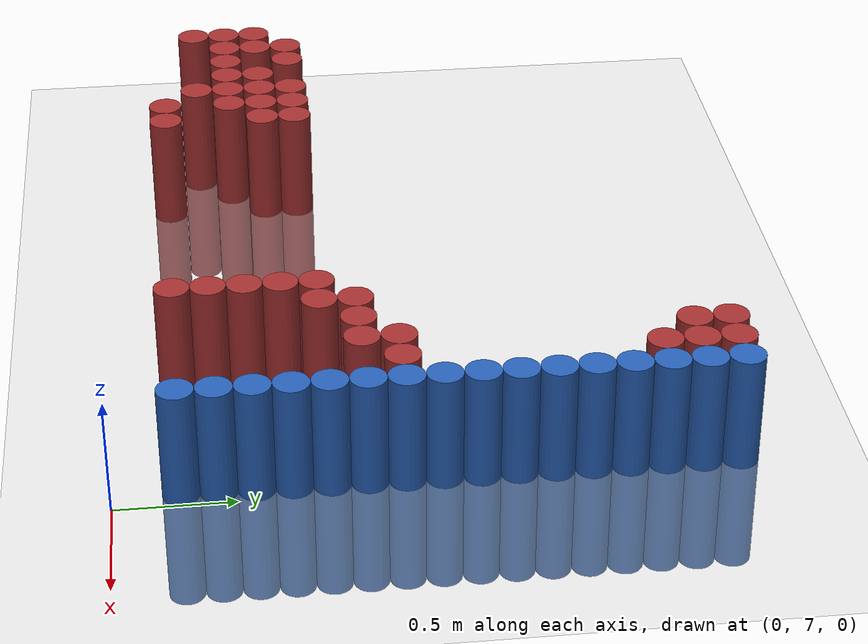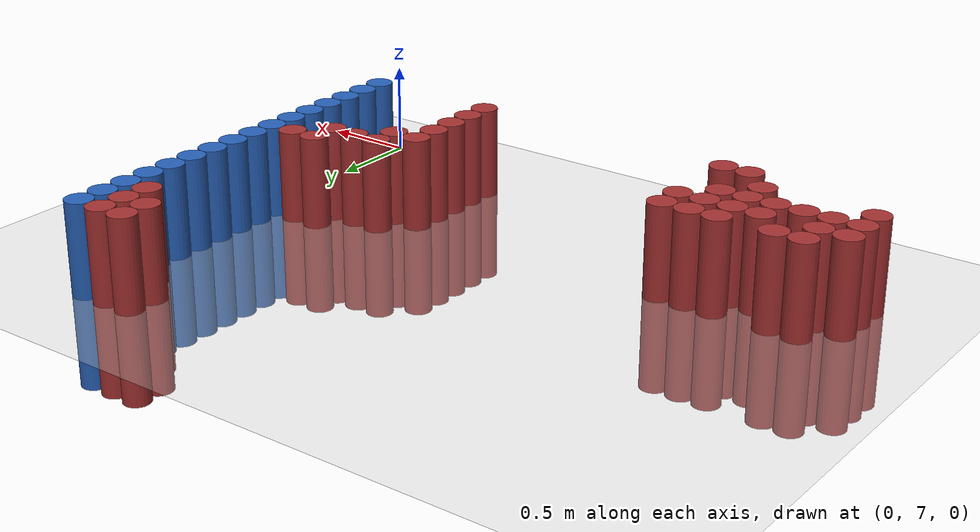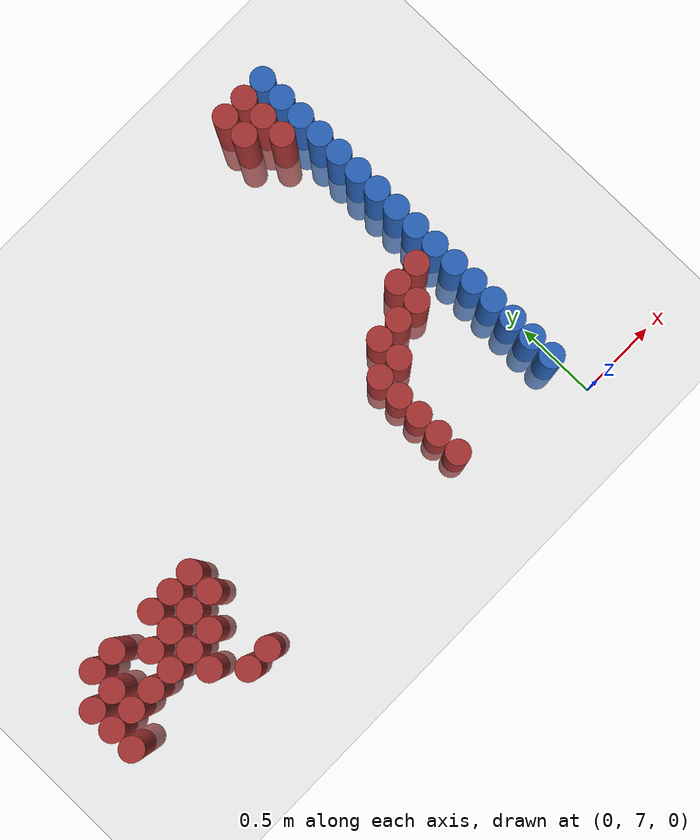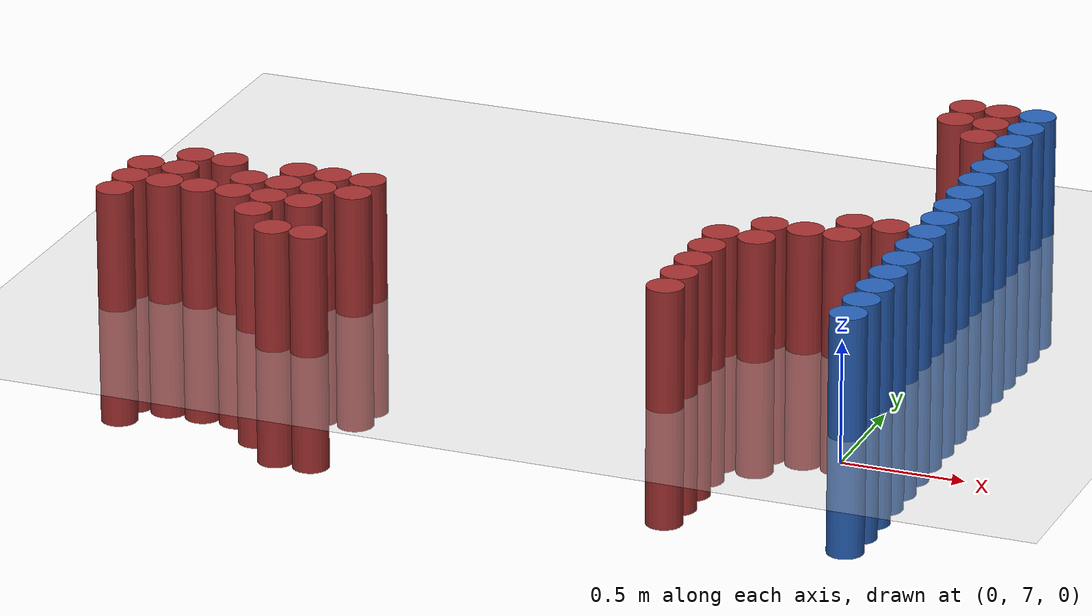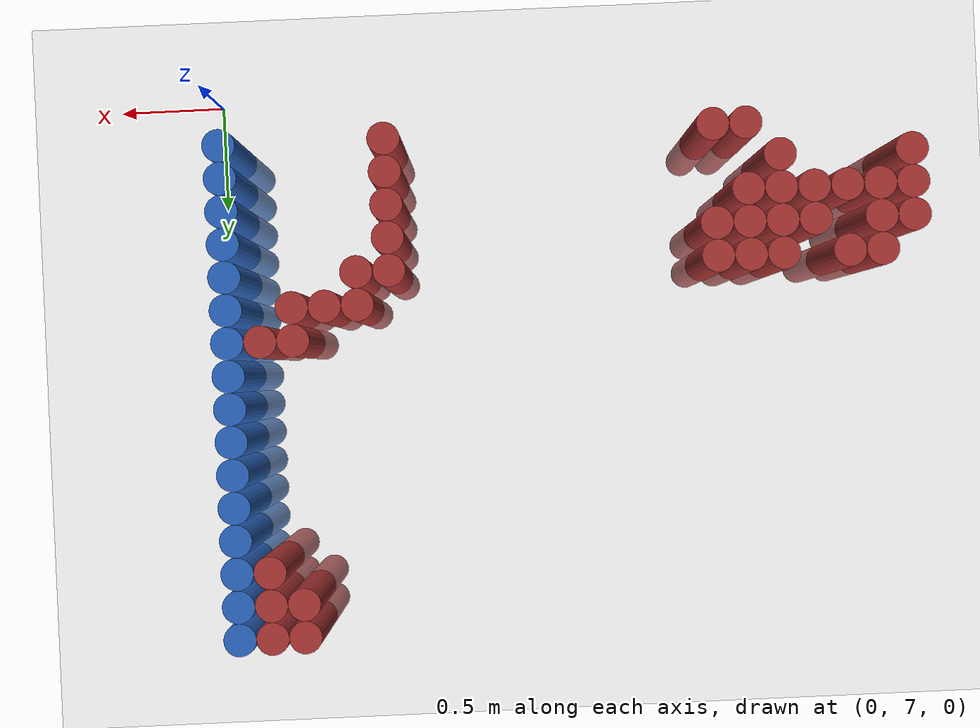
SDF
<sdf version="1.6">
 <world name="default">
  <model name="ground_plane">
   <static>1</static>
   <link name="link">
    <collision name="collision">
     <geometry><plane><normal>0 0 1</normal><size>100 100</size></plane></geometry>
     <surface><friction><ode><mu>100</mu><mu2>50</mu2></ode></friction></surface>
    </collision>
    <visual name="visual">
     <cast_shadows>0</cast_shadows>
     <geometry><plane><normal>0 0 1</normal><size>100 100</size></plane></geometry>
     <material>
      <script><uri>file://media/materials/scripts/gazebo.material</uri><name>Gazebo/Grey</name></script>
     </material>
    </visual>
   </link>
  </model>
  <model name="unit_cylinder_170">
   <static>1</static>
   <pose>-3.225000 7.425000 0.000000 0.000000 0.000000 0.000000</pose>
   <link name="link">
    <inertial>
     <mass>1</mass>
     <inertia><ixx>0.145833</ixx><ixy>0</ixy><ixz>0</ixz><iyy>0.145833</iyy><iyz>0</iyz><izz>0.125</izz></inertia>
    </inertial>
    <collision name="collision">
     <geometry><cylinder><radius>0.075000</radius><length>1</length></cylinder></geometry>
    </collision>
    <visual name="visual">
     <geometry><cylinder><radius>0.075000</radius><length>1</length></cylinder></geometry>
     <material>
      <ambient>0.648000 0.192000 0.192000 1</ambient>
      <diffuse>0.648000 0.192000 0.192000 1</diffuse>
     </material>
     <material>
      <script><name>Gazebo/Grey</name><uri>file://media/materials/scripts/gazebo.material</uri></script>
     </material>
    </visual>
   </link>
  </model>
  <model name="unit_cylinder_171">
   <static>1</static>
   <pose>-3.225000 7.575000 0.000000 0.000000 0.000000 0.000000</pose>
   <link name="link">
    <inertial>
     <mass>1</mass>
     <inertia><ixx>0.145833</ixx><ixy>0</ixy><ixz>0</ixz><iyy>0.145833</iyy><iyz>0</iyz><izz>0.125</izz></inertia>
    </inertial>
    <collision name="collision">
     <geometry><cylinder><radius>0.075000</radius><length>1</length></cylinder></geometry>
    </collision>
    <visual name="visual">
     <geometry><cylinder><radius>0.075000</radius><length>1</length></cylinder></geometry>
     <material>
      <ambient>0.648000 0.192000 0.192000 1</ambient>
      <diffuse>0.648000 0.192000 0.192000 1</diffuse>
     </material>
     <material>
      <script><name>Gazebo/Grey</name><uri>file://media/materials/scripts/gazebo.material</uri></script>
     </material>
    </visual>
   </link>
  </model>
  <model name="unit_cylinder_172">
   <static>1</static>
   <pose>-3.225000 7.725000 0.000000 0.000000 0.000000 0.000000</pose>
   <link name="link">
    <inertial>
     <mass>1</mass>
     <inertia><ixx>0.145833</ixx><ixy>0</ixy><ixz>0</ixz><iyy>0.145833</iyy><iyz>0</iyz><izz>0.125</izz></inertia>
    </inertial>
    <collision name="collision">
     <geometry><cylinder><radius>0.075000</radius><length>1</length></cylinder></geometry>
    </collision>
    <visual name="visual">
     <geometry><cylinder><radius>0.075000</radius><length>1</length></cylinder></geometry>
     <material>
      <ambient>0.648000 0.192000 0.192000 1</ambient>
      <diffuse>0.648000 0.192000 0.192000 1</diffuse>
     </material>
     <material>
      <script><name>Gazebo/Grey</name><uri>file://media/materials/scripts/gazebo.material</uri></script>
     </material>
    </visual>
   </link>
  </model>
  <model name="unit_cylinder_178">
   <static>1</static>
   <pose>-3.075000 7.575000 0.000000 0.000000 0.000000 0.000000</pose>
   <link name="link">
    <inertial>
     <mass>1</mass>
     <inertia><ixx>0.145833</ixx><ixy>0</ixy><ixz>0</ixz><iyy>0.145833</iyy><iyz>0</iyz><izz>0.125</izz></inertia>
    </inertial>
    <collision name="collision">
     <geometry><cylinder><radius>0.075000</radius><length>1</length></cylinder></geometry>
    </collision>
    <visual name="visual">
     <geometry><cylinder><radius>0.075000</radius><length>1</length></cylinder></geometry>
     <material>
      <ambient>0.648000 0.192000 0.192000 1</ambient>
      <diffuse>0.648000 0.192000 0.192000 1</diffuse>
     </material>
     <material>
      <script><name>Gazebo/Grey</name><uri>file://media/materials/scripts/gazebo.material</uri></script>
     </material>
    </visual>
   </link>
  </model>
  <model name="unit_cylinder_179">
   <static>1</static>
   <pose>-3.075000 7.725000 0.000000 0.000000 0.000000 0.000000</pose>
   <link name="link">
    <inertial>
     <mass>1</mass>
     <inertia><ixx>0.145833</ixx><ixy>0</ixy><ixz>0</ixz><iyy>0.145833</iyy><iyz>0</iyz><izz>0.125</izz></inertia>
    </inertial>
    <collision name="collision">
     <geometry><cylinder><radius>0.075000</radius><length>1</length></cylinder></geometry>
    </collision>
    <visual name="visual">
     <geometry><cylinder><radius>0.075000</radius><length>1</length></cylinder></geometry>
     <material>
      <ambient>0.648000 0.192000 0.192000 1</ambient>
      <diffuse>0.648000 0.192000 0.192000 1</diffuse>
     </material>
     <material>
      <script><name>Gazebo/Grey</name><uri>file://media/materials/scripts/gazebo.material</uri></script>
     </material>
    </visual>
   </link>
  </model>
  <model name="unit_cylinder_180">
   <static>1</static>
   <pose>-3.075000 7.875000 0.000000 0.000000 0.000000 0.000000</pose>
   <link name="link">
    <inertial>
     <mass>1</mass>
     <inertia><ixx>0.145833</ixx><ixy>0</ixy><ixz>0</ixz><iyy>0.145833</iyy><iyz>0</iyz><izz>0.125</izz></inertia>
    </inertial>
    <collision name="collision">
     <geometry><cylinder><radius>0.075000</radius><length>1</length></cylinder></geometry>
    </collision>
    <visual name="visual">
     <geometry><cylinder><radius>0.075000</radius><length>1</length></cylinder></geometry>
     <material>
      <ambient>0.648000 0.192000 0.192000 1</ambient>
      <diffuse>0.648000 0.192000 0.192000 1</diffuse>
     </material>
     <material>
      <script><name>Gazebo/Grey</name><uri>file://media/materials/scripts/gazebo.material</uri></script>
     </material>
    </visual>
   </link>
  </model>
  <model name="unit_cylinder_188">
   <static>1</static>
   <pose>-2.925000 7.575000 0.000000 0.000000 0.000000 0.000000</pose>
   <link name="link">
    <inertial>
     <mass>1</mass>
     <inertia><ixx>0.145833</ixx><ixy>0</ixy><ixz>0</ixz><iyy>0.145833</iyy><iyz>0</iyz><izz>0.125</izz></inertia>
    </inertial>
    <collision name="collision">
     <geometry><cylinder><radius>0.075000</radius><length>1</length></cylinder></geometry>
    </collision>
    <visual name="visual">
     <geometry><cylinder><radius>0.075000</radius><length>1</length></cylinder></geometry>
     <material>
      <ambient>0.648000 0.192000 0.192000 1</ambient>
      <diffuse>0.648000 0.192000 0.192000 1</diffuse>
     </material>
     <material>
      <script><name>Gazebo/Grey</name><uri>file://media/materials/scripts/gazebo.material</uri></script>
     </material>
    </visual>
   </link>
  </model>
  <model name="unit_cylinder_189">
   <static>1</static>
   <pose>-2.925000 7.875000 0.000000 0.000000 0.000000 0.000000</pose>
   <link name="link">
    <inertial>
     <mass>1</mass>
     <inertia><ixx>0.145833</ixx><ixy>0</ixy><ixz>0</ixz><iyy>0.145833</iyy><iyz>0</iyz><izz>0.125</izz></inertia>
    </inertial>
    <collision name="collision">
     <geometry><cylinder><radius>0.075000</radius><length>1</length></cylinder></geometry>
    </collision>
    <visual name="visual">
     <geometry><cylinder><radius>0.075000</radius><length>1</length></cylinder></geometry>
     <material>
      <ambient>0.648000 0.192000 0.192000 1</ambient>
      <diffuse>0.648000 0.192000 0.192000 1</diffuse>
     </material>
     <material>
      <script><name>Gazebo/Grey</name><uri>file://media/materials/scripts/gazebo.material</uri></script>
     </material>
    </visual>
   </link>
  </model>
  <model name="unit_cylinder_198">
   <static>1</static>
   <pose>-2.775000 7.575000 0.000000 0.000000 0.000000 0.000000</pose>
   <link name="link">
    <inertial>
     <mass>1</mass>
     <inertia><ixx>0.145833</ixx><ixy>0</ixy><ixz>0</ixz><iyy>0.145833</iyy><iyz>0</iyz><izz>0.125</izz></inertia>
    </inertial>
    <collision name="collision">
     <geometry><cylinder><radius>0.075000</radius><length>1</length></cylinder></geometry>
    </collision>
    <visual name="visual">
     <geometry><cylinder><radius>0.075000</radius><length>1</length></cylinder></geometry>
     <material>
      <ambient>0.648000 0.192000 0.192000 1</ambient>
      <diffuse>0.648000 0.192000 0.192000 1</diffuse>
     </material>
     <material>
      <script><name>Gazebo/Grey</name><uri>file://media/materials/scripts/gazebo.material</uri></script>
     </material>
    </visual>
   </link>
  </model>
  <model name="unit_cylinder_199">
   <static>1</static>
   <pose>-2.775000 7.725000 0.000000 0.000000 0.000000 0.000000</pose>
   <link name="link">
    <inertial>
     <mass>1</mass>
     <inertia><ixx>0.145833</ixx><ixy>0</ixy><ixz>0</ixz><iyy>0.145833</iyy><iyz>0</iyz><izz>0.125</izz></inertia>
    </inertial>
    <collision name="collision">
     <geometry><cylinder><radius>0.075000</radius><length>1</length></cylinder></geometry>
    </collision>
    <visual name="visual">
     <geometry><cylinder><radius>0.075000</radius><length>1</length></cylinder></geometry>
     <material>
      <ambient>0.648000 0.192000 0.192000 1</ambient>
      <diffuse>0.648000 0.192000 0.192000 1</diffuse>
     </material>
     <material>
      <script><name>Gazebo/Grey</name><uri>file://media/materials/scripts/gazebo.material</uri></script>
     </material>
    </visual>
   </link>
  </model>
  <model name="unit_cylinder_209">
   <static>1</static>
   <pose>-2.625000 7.425000 0.000000 0.000000 0.000000 0.000000</pose>
   <link name="link">
    <inertial>
     <mass>1</mass>
     <inertia><ixx>0.145833</ixx><ixy>0</ixy><ixz>0</ixz><iyy>0.145833</iyy><iyz>0</iyz><izz>0.125</izz></inertia>
    </inertial>
    <collision name="collision">
     <geometry><cylinder><radius>0.075000</radius><length>1</length></cylinder></geometry>
    </collision>
    <visual name="visual">
     <geometry><cylinder><radius>0.075000</radius><length>1</length></cylinder></geometry>
     <material>
      <ambient>0.648000 0.192000 0.192000 1</ambient>
      <diffuse>0.648000 0.192000 0.192000 1</diffuse>
     </material>
     <material>
      <script><name>Gazebo/Grey</name><uri>file://media/materials/scripts/gazebo.material</uri></script>
     </material>
    </visual>
   </link>
  </model>
  <model name="unit_cylinder_210">
   <static>1</static>
   <pose>-2.625000 7.575000 0.000000 0.000000 0.000000 0.000000</pose>
   <link name="link">
    <inertial>
     <mass>1</mass>
     <inertia><ixx>0.145833</ixx><ixy>0</ixy><ixz>0</ixz><iyy>0.145833</iyy><iyz>0</iyz><izz>0.125</izz></inertia>
    </inertial>
    <collision name="collision">
     <geometry><cylinder><radius>0.075000</radius><length>1</length></cylinder></geometry>
    </collision>
    <visual name="visual">
     <geometry><cylinder><radius>0.075000</radius><length>1</length></cylinder></geometry>
     <material>
      <ambient>0.648000 0.192000 0.192000 1</ambient>
      <diffuse>0.648000 0.192000 0.192000 1</diffuse>
     </material>
     <material>
      <script><name>Gazebo/Grey</name><uri>file://media/materials/scripts/gazebo.material</uri></script>
     </material>
    </visual>
   </link>
  </model>
  <model name="unit_cylinder_211">
   <static>1</static>
   <pose>-2.625000 7.725000 0.000000 0.000000 0.000000 0.000000</pose>
   <link name="link">
    <inertial>
     <mass>1</mass>
     <inertia><ixx>0.145833</ixx><ixy>0</ixy><ixz>0</ixz><iyy>0.145833</iyy><iyz>0</iyz><izz>0.125</izz></inertia>
    </inertial>
    <collision name="collision">
     <geometry><cylinder><radius>0.075000</radius><length>1</length></cylinder></geometry>
    </collision>
    <visual name="visual">
     <geometry><cylinder><radius>0.075000</radius><length>1</length></cylinder></geometry>
     <material>
      <ambient>0.648000 0.192000 0.192000 1</ambient>
      <diffuse>0.648000 0.192000 0.192000 1</diffuse>
     </material>
     <material>
      <script><name>Gazebo/Grey</name><uri>file://media/materials/scripts/gazebo.material</uri></script>
     </material>
    </visual>
   </link>
  </model>
  <model name="unit_cylinder_212">
   <static>1</static>
   <pose>-2.625000 7.875000 0.000000 0.000000 0.000000 0.000000</pose>
   <link name="link">
    <inertial>
     <mass>1</mass>
     <inertia><ixx>0.145833</ixx><ixy>0</ixy><ixz>0</ixz><iyy>0.145833</iyy><iyz>0</iyz><izz>0.125</izz></inertia>
    </inertial>
    <collision name="collision">
     <geometry><cylinder><radius>0.075000</radius><length>1</length></cylinder></geometry>
    </collision>
    <visual name="visual">
     <geometry><cylinder><radius>0.075000</radius><length>1</length></cylinder></geometry>
     <material>
      <ambient>0.648000 0.192000 0.192000 1</ambient>
      <diffuse>0.648000 0.192000 0.192000 1</diffuse>
     </material>
     <material>
      <script><name>Gazebo/Grey</name><uri>file://media/materials/scripts/gazebo.material</uri></script>
     </material>
    </visual>
   </link>
  </model>
  <model name="unit_cylinder_217">
   <static>1</static>
   <pose>-2.475000 7.275000 0.000000 0.000000 0.000000 0.000000</pose>
   <link name="link">
    <inertial>
     <mass>1</mass>
     <inertia><ixx>0.145833</ixx><ixy>0</ixy><ixz>0</ixz><iyy>0.145833</iyy><iyz>0</iyz><izz>0.125</izz></inertia>
    </inertial>
    <collision name="collision">
     <geometry><cylinder><radius>0.075000</radius><length>1</length></cylinder></geometry>
    </collision>
    <visual name="visual">
     <geometry><cylinder><radius>0.075000</radius><length>1</length></cylinder></geometry>
     <material>
      <ambient>0.648000 0.192000 0.192000 1</ambient>
      <diffuse>0.648000 0.192000 0.192000 1</diffuse>
     </material>
     <material>
      <script><name>Gazebo/Grey</name><uri>file://media/materials/scripts/gazebo.material</uri></script>
     </material>
    </visual>
   </link>
  </model>
  <model name="unit_cylinder_218">
   <static>1</static>
   <pose>-2.475000 7.575000 0.000000 0.000000 0.000000 0.000000</pose>
   <link name="link">
    <inertial>
     <mass>1</mass>
     <inertia><ixx>0.145833</ixx><ixy>0</ixy><ixz>0</ixz><iyy>0.145833</iyy><iyz>0</iyz><izz>0.125</izz></inertia>
    </inertial>
    <collision name="collision">
     <geometry><cylinder><radius>0.075000</radius><length>1</length></cylinder></geometry>
    </collision>
    <visual name="visual">
     <geometry><cylinder><radius>0.075000</radius><length>1</length></cylinder></geometry>
     <material>
      <ambient>0.648000 0.192000 0.192000 1</ambient>
      <diffuse>0.648000 0.192000 0.192000 1</diffuse>
     </material>
     <material>
      <script><name>Gazebo/Grey</name><uri>file://media/materials/scripts/gazebo.material</uri></script>
     </material>
    </visual>
   </link>
  </model>
  <model name="unit_cylinder_219">
   <static>1</static>
   <pose>-2.475000 7.725000 0.000000 0.000000 0.000000 0.000000</pose>
   <link name="link">
    <inertial>
     <mass>1</mass>
     <inertia><ixx>0.145833</ixx><ixy>0</ixy><ixz>0</ixz><iyy>0.145833</iyy><iyz>0</iyz><izz>0.125</izz></inertia>
    </inertial>
    <collision name="collision">
     <geometry><cylinder><radius>0.075000</radius><length>1</length></cylinder></geometry>
    </collision>
    <visual name="visual">
     <geometry><cylinder><radius>0.075000</radius><length>1</length></cylinder></geometry>
     <material>
      <ambient>0.648000 0.192000 0.192000 1</ambient>
      <diffuse>0.648000 0.192000 0.192000 1</diffuse>
     </material>
     <material>
      <script><name>Gazebo/Grey</name><uri>file://media/materials/scripts/gazebo.material</uri></script>
     </material>
    </visual>
   </link>
  </model>
  <model name="unit_cylinder_220">
   <static>1</static>
   <pose>-2.475000 7.875000 0.000000 0.000000 0.000000 0.000000</pose>
   <link name="link">
    <inertial>
     <mass>1</mass>
     <inertia><ixx>0.145833</ixx><ixy>0</ixy><ixz>0</ixz><iyy>0.145833</iyy><iyz>0</iyz><izz>0.125</izz></inertia>
    </inertial>
    <collision name="collision">
     <geometry><cylinder><radius>0.075000</radius><length>1</length></cylinder></geometry>
    </collision>
    <visual name="visual">
     <geometry><cylinder><radius>0.075000</radius><length>1</length></cylinder></geometry>
     <material>
      <ambient>0.648000 0.192000 0.192000 1</ambient>
      <diffuse>0.648000 0.192000 0.192000 1</diffuse>
     </material>
     <material>
      <script><name>Gazebo/Grey</name><uri>file://media/materials/scripts/gazebo.material</uri></script>
     </material>
    </visual>
   </link>
  </model>
  <model name="unit_cylinder_227">
   <static>1</static>
   <pose>-2.325000 7.275000 0.000000 0.000000 0.000000 0.000000</pose>
   <link name="link">
    <inertial>
     <mass>1</mass>
     <inertia><ixx>0.145833</ixx><ixy>0</ixy><ixz>0</ixz><iyy>0.145833</iyy><iyz>0</iyz><izz>0.125</izz></inertia>
    </inertial>
    <collision name="collision">
     <geometry><cylinder><radius>0.075000</radius><length>1</length></cylinder></geometry>
    </collision>
    <visual name="visual">
     <geometry><cylinder><radius>0.075000</radius><length>1</length></cylinder></geometry>
     <material>
      <ambient>0.648000 0.192000 0.192000 1</ambient>
      <diffuse>0.648000 0.192000 0.192000 1</diffuse>
     </material>
     <material>
      <script><name>Gazebo/Grey</name><uri>file://media/materials/scripts/gazebo.material</uri></script>
     </material>
    </visual>
   </link>
  </model>
  <model name="unit_cylinder_228">
   <static>1</static>
   <pose>-2.325000 7.725000 0.000000 0.000000 0.000000 0.000000</pose>
   <link name="link">
    <inertial>
     <mass>1</mass>
     <inertia><ixx>0.145833</ixx><ixy>0</ixy><ixz>0</ixz><iyy>0.145833</iyy><iyz>0</iyz><izz>0.125</izz></inertia>
    </inertial>
    <collision name="collision">
     <geometry><cylinder><radius>0.075000</radius><length>1</length></cylinder></geometry>
    </collision>
    <visual name="visual">
     <geometry><cylinder><radius>0.075000</radius><length>1</length></cylinder></geometry>
     <material>
      <ambient>0.648000 0.192000 0.192000 1</ambient>
      <diffuse>0.648000 0.192000 0.192000 1</diffuse>
     </material>
     <material>
      <script><name>Gazebo/Grey</name><uri>file://media/materials/scripts/gazebo.material</uri></script>
     </material>
    </visual>
   </link>
  </model>
  <model name="unit_cylinder_229">
   <static>1</static>
   <pose>-2.325000 7.875000 0.000000 0.000000 0.000000 0.000000</pose>
   <link name="link">
    <inertial>
     <mass>1</mass>
     <inertia><ixx>0.145833</ixx><ixy>0</ixy><ixz>0</ixz><iyy>0.145833</iyy><iyz>0</iyz><izz>0.125</izz></inertia>
    </inertial>
    <collision name="collision">
     <geometry><cylinder><radius>0.075000</radius><length>1</length></cylinder></geometry>
    </collision>
    <visual name="visual">
     <geometry><cylinder><radius>0.075000</radius><length>1</length></cylinder></geometry>
     <material>
      <ambient>0.648000 0.192000 0.192000 1</ambient>
      <diffuse>0.648000 0.192000 0.192000 1</diffuse>
     </material>
     <material>
      <script><name>Gazebo/Grey</name><uri>file://media/materials/scripts/gazebo.material</uri></script>
     </material>
    </visual>
   </link>
  </model>
  <model name="unit_cylinder_261">
   <static>1</static>
   <pose>-0.825000 7.275000 0.000000 0.000000 0.000000 0.000000</pose>
   <link name="link">
    <inertial>
     <mass>1</mass>
     <inertia><ixx>0.145833</ixx><ixy>0</ixy><ixz>0</ixz><iyy>0.145833</iyy><iyz>0</iyz><izz>0.125</izz></inertia>
    </inertial>
    <collision name="collision">
     <geometry><cylinder><radius>0.075000</radius><length>1</length></cylinder></geometry>
    </collision>
    <visual name="visual">
     <geometry><cylinder><radius>0.075000</radius><length>1</length></cylinder></geometry>
     <material>
      <ambient>0.648000 0.192000 0.192000 1</ambient>
      <diffuse>0.648000 0.192000 0.192000 1</diffuse>
     </material>
     <material>
      <script><name>Gazebo/Grey</name><uri>file://media/materials/scripts/gazebo.material</uri></script>
     </material>
    </visual>
   </link>
  </model>
  <model name="unit_cylinder_262">
   <static>1</static>
   <pose>-0.825000 7.425000 0.000000 0.000000 0.000000 0.000000</pose>
   <link name="link">
    <inertial>
     <mass>1</mass>
     <inertia><ixx>0.145833</ixx><ixy>0</ixy><ixz>0</ixz><iyy>0.145833</iyy><iyz>0</iyz><izz>0.125</izz></inertia>
    </inertial>
    <collision name="collision">
     <geometry><cylinder><radius>0.075000</radius><length>1</length></cylinder></geometry>
    </collision>
    <visual name="visual">
     <geometry><cylinder><radius>0.075000</radius><length>1</length></cylinder></geometry>
     <material>
      <ambient>0.648000 0.192000 0.192000 1</ambient>
      <diffuse>0.648000 0.192000 0.192000 1</diffuse>
     </material>
     <material>
      <script><name>Gazebo/Grey</name><uri>file://media/materials/scripts/gazebo.material</uri></script>
     </material>
    </visual>
   </link>
  </model>
  <model name="unit_cylinder_263">
   <static>1</static>
   <pose>-0.825000 7.575000 0.000000 0.000000 0.000000 0.000000</pose>
   <link name="link">
    <inertial>
     <mass>1</mass>
     <inertia><ixx>0.145833</ixx><ixy>0</ixy><ixz>0</ixz><iyy>0.145833</iyy><iyz>0</iyz><izz>0.125</izz></inertia>
    </inertial>
    <collision name="collision">
     <geometry><cylinder><radius>0.075000</radius><length>1</length></cylinder></geometry>
    </collision>
    <visual name="visual">
     <geometry><cylinder><radius>0.075000</radius><length>1</length></cylinder></geometry>
     <material>
      <ambient>0.648000 0.192000 0.192000 1</ambient>
      <diffuse>0.648000 0.192000 0.192000 1</diffuse>
     </material>
     <material>
      <script><name>Gazebo/Grey</name><uri>file://media/materials/scripts/gazebo.material</uri></script>
     </material>
    </visual>
   </link>
  </model>
  <model name="unit_cylinder_264">
   <static>1</static>
   <pose>-0.825000 7.725000 0.000000 0.000000 0.000000 0.000000</pose>
   <link name="link">
    <inertial>
     <mass>1</mass>
     <inertia><ixx>0.145833</ixx><ixy>0</ixy><ixz>0</ixz><iyy>0.145833</iyy><iyz>0</iyz><izz>0.125</izz></inertia>
    </inertial>
    <collision name="collision">
     <geometry><cylinder><radius>0.075000</radius><length>1</length></cylinder></geometry>
    </collision>
    <visual name="visual">
     <geometry><cylinder><radius>0.075000</radius><length>1</length></cylinder></geometry>
     <material>
      <ambient>0.648000 0.192000 0.192000 1</ambient>
      <diffuse>0.648000 0.192000 0.192000 1</diffuse>
     </material>
     <material>
      <script><name>Gazebo/Grey</name><uri>file://media/materials/scripts/gazebo.material</uri></script>
     </material>
    </visual>
   </link>
  </model>
  <model name="unit_cylinder_265">
   <static>1</static>
   <pose>-0.825000 7.875000 0.000000 0.000000 0.000000 0.000000</pose>
   <link name="link">
    <inertial>
     <mass>1</mass>
     <inertia><ixx>0.145833</ixx><ixy>0</ixy><ixz>0</ixz><iyy>0.145833</iyy><iyz>0</iyz><izz>0.125</izz></inertia>
    </inertial>
    <collision name="collision">
     <geometry><cylinder><radius>0.075000</radius><length>1</length></cylinder></geometry>
    </collision>
    <visual name="visual">
     <geometry><cylinder><radius>0.075000</radius><length>1</length></cylinder></geometry>
     <material>
      <ambient>0.648000 0.192000 0.192000 1</ambient>
      <diffuse>0.648000 0.192000 0.192000 1</diffuse>
     </material>
     <material>
      <script><name>Gazebo/Grey</name><uri>file://media/materials/scripts/gazebo.material</uri></script>
     </material>
    </visual>
   </link>
  </model>
  <model name="unit_cylinder_270">
   <static>1</static>
   <pose>-0.675000 7.875000 0.000000 0.000000 0.000000 0.000000</pose>
   <link name="link">
    <inertial>
     <mass>1</mass>
     <inertia><ixx>0.145833</ixx><ixy>0</ixy><ixz>0</ixz><iyy>0.145833</iyy><iyz>0</iyz><izz>0.125</izz></inertia>
    </inertial>
    <collision name="collision">
     <geometry><cylinder><radius>0.075000</radius><length>1</length></cylinder></geometry>
    </collision>
    <visual name="visual">
     <geometry><cylinder><radius>0.075000</radius><length>1</length></cylinder></geometry>
     <material>
      <ambient>0.648000 0.192000 0.192000 1</ambient>
      <diffuse>0.648000 0.192000 0.192000 1</diffuse>
     </material>
     <material>
      <script><name>Gazebo/Grey</name><uri>file://media/materials/scripts/gazebo.material</uri></script>
     </material>
    </visual>
   </link>
  </model>
  <model name="unit_cylinder_271">
   <static>1</static>
   <pose>-0.675000 8.025000 0.000000 0.000000 0.000000 0.000000</pose>
   <link name="link">
    <inertial>
     <mass>1</mass>
     <inertia><ixx>0.145833</ixx><ixy>0</ixy><ixz>0</ixz><iyy>0.145833</iyy><iyz>0</iyz><izz>0.125</izz></inertia>
    </inertial>
    <collision name="collision">
     <geometry><cylinder><radius>0.075000</radius><length>1</length></cylinder></geometry>
    </collision>
    <visual name="visual">
     <geometry><cylinder><radius>0.075000</radius><length>1</length></cylinder></geometry>
     <material>
      <ambient>0.648000 0.192000 0.192000 1</ambient>
      <diffuse>0.648000 0.192000 0.192000 1</diffuse>
     </material>
     <material>
      <script><name>Gazebo/Grey</name><uri>file://media/materials/scripts/gazebo.material</uri></script>
     </material>
    </visual>
   </link>
  </model>
  <model name="unit_cylinder_273">
   <static>1</static>
   <pose>-0.525000 8.025000 0.000000 0.000000 0.000000 0.000000</pose>
   <link name="link">
    <inertial>
     <mass>1</mass>
     <inertia><ixx>0.145833</ixx><ixy>0</ixy><ixz>0</ixz><iyy>0.145833</iyy><iyz>0</iyz><izz>0.125</izz></inertia>
    </inertial>
    <collision name="collision">
     <geometry><cylinder><radius>0.075000</radius><length>1</length></cylinder></geometry>
    </collision>
    <visual name="visual">
     <geometry><cylinder><radius>0.075000</radius><length>1</length></cylinder></geometry>
     <material>
      <ambient>0.648000 0.192000 0.192000 1</ambient>
      <diffuse>0.648000 0.192000 0.192000 1</diffuse>
     </material>
     <material>
      <script><name>Gazebo/Grey</name><uri>file://media/materials/scripts/gazebo.material</uri></script>
     </material>
    </visual>
   </link>
  </model>
  <model name="unit_cylinder_275">
   <static>1</static>
   <pose>-0.375000 8.025000 0.000000 0.000000 0.000000 0.000000</pose>
   <link name="link">
    <inertial>
     <mass>1</mass>
     <inertia><ixx>0.145833</ixx><ixy>0</ixy><ixz>0</ixz><iyy>0.145833</iyy><iyz>0</iyz><izz>0.125</izz></inertia>
    </inertial>
    <collision name="collision">
     <geometry><cylinder><radius>0.075000</radius><length>1</length></cylinder></geometry>
    </collision>
    <visual name="visual">
     <geometry><cylinder><radius>0.075000</radius><length>1</length></cylinder></geometry>
     <material>
      <ambient>0.648000 0.192000 0.192000 1</ambient>
      <diffuse>0.648000 0.192000 0.192000 1</diffuse>
     </material>
     <material>
      <script><name>Gazebo/Grey</name><uri>file://media/materials/scripts/gazebo.material</uri></script>
     </material>
    </visual>
   </link>
  </model>
  <model name="unit_cylinder_276">
   <static>1</static>
   <pose>-0.375000 8.175000 0.000000 0.000000 0.000000 0.000000</pose>
   <link name="link">
    <inertial>
     <mass>1</mass>
     <inertia><ixx>0.145833</ixx><ixy>0</ixy><ixz>0</ixz><iyy>0.145833</iyy><iyz>0</iyz><izz>0.125</izz></inertia>
    </inertial>
    <collision name="collision">
     <geometry><cylinder><radius>0.075000</radius><length>1</length></cylinder></geometry>
    </collision>
    <visual name="visual">
     <geometry><cylinder><radius>0.075000</radius><length>1</length></cylinder></geometry>
     <material>
      <ambient>0.648000 0.192000 0.192000 1</ambient>
      <diffuse>0.648000 0.192000 0.192000 1</diffuse>
     </material>
     <material>
      <script><name>Gazebo/Grey</name><uri>file://media/materials/scripts/gazebo.material</uri></script>
     </material>
    </visual>
   </link>
  </model>
  <model name="unit_cylinder_277">
   <static>1</static>
   <pose>-0.375000 9.375000 0.000000 0.000000 0.000000 0.000000</pose>
   <link name="link">
    <inertial>
     <mass>1</mass>
     <inertia><ixx>0.145833</ixx><ixy>0</ixy><ixz>0</ixz><iyy>0.145833</iyy><iyz>0</iyz><izz>0.125</izz></inertia>
    </inertial>
    <collision name="collision">
     <geometry><cylinder><radius>0.075000</radius><length>1</length></cylinder></geometry>
    </collision>
    <visual name="visual">
     <geometry><cylinder><radius>0.075000</radius><length>1</length></cylinder></geometry>
     <material>
      <ambient>0.648000 0.192000 0.192000 1</ambient>
      <diffuse>0.648000 0.192000 0.192000 1</diffuse>
     </material>
     <material>
      <script><name>Gazebo/Grey</name><uri>file://media/materials/scripts/gazebo.material</uri></script>
     </material>
    </visual>
   </link>
  </model>
  <model name="unit_cylinder_278">
   <static>1</static>
   <pose>-0.375000 9.525000 0.000000 0.000000 0.000000 0.000000</pose>
   <link name="link">
    <inertial>
     <mass>1</mass>
     <inertia><ixx>0.145833</ixx><ixy>0</ixy><ixz>0</ixz><iyy>0.145833</iyy><iyz>0</iyz><izz>0.125</izz></inertia>
    </inertial>
    <collision name="collision">
     <geometry><cylinder><radius>0.075000</radius><length>1</length></cylinder></geometry>
    </collision>
    <visual name="visual">
     <geometry><cylinder><radius>0.075000</radius><length>1</length></cylinder></geometry>
     <material>
      <ambient>0.648000 0.192000 0.192000 1</ambient>
      <diffuse>0.648000 0.192000 0.192000 1</diffuse>
     </material>
     <material>
      <script><name>Gazebo/Grey</name><uri>file://media/materials/scripts/gazebo.material</uri></script>
     </material>
    </visual>
   </link>
  </model>
  <model name="unit_cylinder_280">
   <static>1</static>
   <pose>-0.225000 8.175000 0.000000 0.000000 0.000000 0.000000</pose>
   <link name="link">
    <inertial>
     <mass>1</mass>
     <inertia><ixx>0.145833</ixx><ixy>0</ixy><ixz>0</ixz><iyy>0.145833</iyy><iyz>0</iyz><izz>0.125</izz></inertia>
    </inertial>
    <collision name="collision">
     <geometry><cylinder><radius>0.075000</radius><length>1</length></cylinder></geometry>
    </collision>
    <visual name="visual">
     <geometry><cylinder><radius>0.075000</radius><length>1</length></cylinder></geometry>
     <material>
      <ambient>0.648000 0.192000 0.192000 1</ambient>
      <diffuse>0.648000 0.192000 0.192000 1</diffuse>
     </material>
     <material>
      <script><name>Gazebo/Grey</name><uri>file://media/materials/scripts/gazebo.material</uri></script>
     </material>
    </visual>
   </link>
  </model>
  <model name="unit_cylinder_281">
   <static>1</static>
   <pose>-0.225000 9.225000 0.000000 0.000000 0.000000 0.000000</pose>
   <link name="link">
    <inertial>
     <mass>1</mass>
     <inertia><ixx>0.145833</ixx><ixy>0</ixy><ixz>0</ixz><iyy>0.145833</iyy><iyz>0</iyz><izz>0.125</izz></inertia>
    </inertial>
    <collision name="collision">
     <geometry><cylinder><radius>0.075000</radius><length>1</length></cylinder></geometry>
    </collision>
    <visual name="visual">
     <geometry><cylinder><radius>0.075000</radius><length>1</length></cylinder></geometry>
     <material>
      <ambient>0.648000 0.192000 0.192000 1</ambient>
      <diffuse>0.648000 0.192000 0.192000 1</diffuse>
     </material>
     <material>
      <script><name>Gazebo/Grey</name><uri>file://media/materials/scripts/gazebo.material</uri></script>
     </material>
    </visual>
   </link>
  </model>
  <model name="unit_cylinder_282">
   <static>1</static>
   <pose>-0.225000 9.375000 0.000000 0.000000 0.000000 0.000000</pose>
   <link name="link">
    <inertial>
     <mass>1</mass>
     <inertia><ixx>0.145833</ixx><ixy>0</ixy><ixz>0</ixz><iyy>0.145833</iyy><iyz>0</iyz><izz>0.125</izz></inertia>
    </inertial>
    <collision name="collision">
     <geometry><cylinder><radius>0.075000</radius><length>1</length></cylinder></geometry>
    </collision>
    <visual name="visual">
     <geometry><cylinder><radius>0.075000</radius><length>1</length></cylinder></geometry>
     <material>
      <ambient>0.648000 0.192000 0.192000 1</ambient>
      <diffuse>0.648000 0.192000 0.192000 1</diffuse>
     </material>
     <material>
      <script><name>Gazebo/Grey</name><uri>file://media/materials/scripts/gazebo.material</uri></script>
     </material>
    </visual>
   </link>
  </model>
  <model name="unit_cylinder_283">
   <static>1</static>
   <pose>-0.225000 9.525000 0.000000 0.000000 0.000000 0.000000</pose>
   <link name="link">
    <inertial>
     <mass>1</mass>
     <inertia><ixx>0.145833</ixx><ixy>0</ixy><ixz>0</ixz><iyy>0.145833</iyy><iyz>0</iyz><izz>0.125</izz></inertia>
    </inertial>
    <collision name="collision">
     <geometry><cylinder><radius>0.075000</radius><length>1</length></cylinder></geometry>
    </collision>
    <visual name="visual">
     <geometry><cylinder><radius>0.075000</radius><length>1</length></cylinder></geometry>
     <material>
      <ambient>0.648000 0.192000 0.192000 1</ambient>
      <diffuse>0.648000 0.192000 0.192000 1</diffuse>
     </material>
     <material>
      <script><name>Gazebo/Grey</name><uri>file://media/materials/scripts/gazebo.material</uri></script>
     </material>
    </visual>
   </link>
  </model>
  <model name="unit_cylinder_298">
   <static>1</static>
   <pose>-0.075000 7.275000 0.000000 0.000000 0.000000 0.000000</pose>
   <link name="link">
    <inertial>
     <mass>1</mass>
     <inertia><ixx>0.145833</ixx><ixy>0</ixy><ixz>0</ixz><iyy>0.145833</iyy><iyz>0</iyz><izz>0.125</izz></inertia>
    </inertial>
    <collision name="collision">
     <geometry><cylinder><radius>0.075000</radius><length>1</length></cylinder></geometry>
    </collision>
    <visual name="visual">
     <geometry><cylinder><radius>0.075000</radius><length>1</length></cylinder></geometry>
     <material>
      <ambient>0.152000 0.379000 0.720000 1</ambient>
      <diffuse>0.152000 0.379000 0.720000 1</diffuse>
     </material>
     <material>
      <script><name>Gazebo/Grey</name><uri>file://media/materials/scripts/gazebo.material</uri></script>
     </material>
    </visual>
   </link>
  </model>
  <model name="unit_cylinder_299">
   <static>1</static>
   <pose>-0.075000 7.425000 0.000000 0.000000 0.000000 0.000000</pose>
   <link name="link">
    <inertial>
     <mass>1</mass>
     <inertia><ixx>0.145833</ixx><ixy>0</ixy><ixz>0</ixz><iyy>0.145833</iyy><iyz>0</iyz><izz>0.125</izz></inertia>
    </inertial>
    <collision name="collision">
     <geometry><cylinder><radius>0.075000</radius><length>1</length></cylinder></geometry>
    </collision>
    <visual name="visual">
     <geometry><cylinder><radius>0.075000</radius><length>1</length></cylinder></geometry>
     <material>
      <ambient>0.152000 0.379000 0.720000 1</ambient>
      <diffuse>0.152000 0.379000 0.720000 1</diffuse>
     </material>
     <material>
      <script><name>Gazebo/Grey</name><uri>file://media/materials/scripts/gazebo.material</uri></script>
     </material>
    </visual>
   </link>
  </model>
  <model name="unit_cylinder_300">
   <static>1</static>
   <pose>-0.075000 7.575000 0.000000 0.000000 0.000000 0.000000</pose>
   <link name="link">
    <inertial>
     <mass>1</mass>
     <inertia><ixx>0.145833</ixx><ixy>0</ixy><ixz>0</ixz><iyy>0.145833</iyy><iyz>0</iyz><izz>0.125</izz></inertia>
    </inertial>
    <collision name="collision">
     <geometry><cylinder><radius>0.075000</radius><length>1</length></cylinder></geometry>
    </collision>
    <visual name="visual">
     <geometry><cylinder><radius>0.075000</radius><length>1</length></cylinder></geometry>
     <material>
      <ambient>0.152000 0.379000 0.720000 1</ambient>
      <diffuse>0.152000 0.379000 0.720000 1</diffuse>
     </material>
     <material>
      <script><name>Gazebo/Grey</name><uri>file://media/materials/scripts/gazebo.material</uri></script>
     </material>
    </visual>
   </link>
  </model>
  <model name="unit_cylinder_301">
   <static>1</static>
   <pose>-0.075000 7.725000 0.000000 0.000000 0.000000 0.000000</pose>
   <link name="link">
    <inertial>
     <mass>1</mass>
     <inertia><ixx>0.145833</ixx><ixy>0</ixy><ixz>0</ixz><iyy>0.145833</iyy><iyz>0</iyz><izz>0.125</izz></inertia>
    </inertial>
    <collision name="collision">
     <geometry><cylinder><radius>0.075000</radius><length>1</length></cylinder></geometry>
    </collision>
    <visual name="visual">
     <geometry><cylinder><radius>0.075000</radius><length>1</length></cylinder></geometry>
     <material>
      <ambient>0.152000 0.379000 0.720000 1</ambient>
      <diffuse>0.152000 0.379000 0.720000 1</diffuse>
     </material>
     <material>
      <script><name>Gazebo/Grey</name><uri>file://media/materials/scripts/gazebo.material</uri></script>
     </material>
    </visual>
   </link>
  </model>
  <model name="unit_cylinder_302">
   <static>1</static>
   <pose>-0.075000 7.875000 0.000000 0.000000 0.000000 0.000000</pose>
   <link name="link">
    <inertial>
     <mass>1</mass>
     <inertia><ixx>0.145833</ixx><ixy>0</ixy><ixz>0</ixz><iyy>0.145833</iyy><iyz>0</iyz><izz>0.125</izz></inertia>
    </inertial>
    <collision name="collision">
     <geometry><cylinder><radius>0.075000</radius><length>1</length></cylinder></geometry>
    </collision>
    <visual name="visual">
     <geometry><cylinder><radius>0.075000</radius><length>1</length></cylinder></geometry>
     <material>
      <ambient>0.152000 0.379000 0.720000 1</ambient>
      <diffuse>0.152000 0.379000 0.720000 1</diffuse>
     </material>
     <material>
      <script><name>Gazebo/Grey</name><uri>file://media/materials/scripts/gazebo.material</uri></script>
     </material>
    </visual>
   </link>
  </model>
  <model name="unit_cylinder_303">
   <static>1</static>
   <pose>-0.075000 8.025000 0.000000 0.000000 0.000000 0.000000</pose>
   <link name="link">
    <inertial>
     <mass>1</mass>
     <inertia><ixx>0.145833</ixx><ixy>0</ixy><ixz>0</ixz><iyy>0.145833</iyy><iyz>0</iyz><izz>0.125</izz></inertia>
    </inertial>
    <collision name="collision">
     <geometry><cylinder><radius>0.075000</radius><length>1</length></cylinder></geometry>
    </collision>
    <visual name="visual">
     <geometry><cylinder><radius>0.075000</radius><length>1</length></cylinder></geometry>
     <material>
      <ambient>0.152000 0.379000 0.720000 1</ambient>
      <diffuse>0.152000 0.379000 0.720000 1</diffuse>
     </material>
     <material>
      <script><name>Gazebo/Grey</name><uri>file://media/materials/scripts/gazebo.material</uri></script>
     </material>
    </visual>
   </link>
  </model>
  <model name="unit_cylinder_304">
   <static>1</static>
   <pose>-0.075000 8.175000 0.000000 0.000000 0.000000 0.000000</pose>
   <link name="link">
    <inertial>
     <mass>1</mass>
     <inertia><ixx>0.145833</ixx><ixy>0</ixy><ixz>0</ixz><iyy>0.145833</iyy><iyz>0</iyz><izz>0.125</izz></inertia>
    </inertial>
    <collision name="collision">
     <geometry><cylinder><radius>0.075000</radius><length>1</length></cylinder></geometry>
    </collision>
    <visual name="visual">
     <geometry><cylinder><radius>0.075000</radius><length>1</length></cylinder></geometry>
     <material>
      <ambient>0.152000 0.379000 0.720000 1</ambient>
      <diffuse>0.152000 0.379000 0.720000 1</diffuse>
     </material>
     <material>
      <script><name>Gazebo/Grey</name><uri>file://media/materials/scripts/gazebo.material</uri></script>
     </material>
    </visual>
   </link>
  </model>
  <model name="unit_cylinder_305">
   <static>1</static>
   <pose>-0.075000 8.325000 0.000000 0.000000 0.000000 0.000000</pose>
   <link name="link">
    <inertial>
     <mass>1</mass>
     <inertia><ixx>0.145833</ixx><ixy>0</ixy><ixz>0</ixz><iyy>0.145833</iyy><iyz>0</iyz><izz>0.125</izz></inertia>
    </inertial>
    <collision name="collision">
     <geometry><cylinder><radius>0.075000</radius><length>1</length></cylinder></geometry>
    </collision>
    <visual name="visual">
     <geometry><cylinder><radius>0.075000</radius><length>1</length></cylinder></geometry>
     <material>
      <ambient>0.152000 0.379000 0.720000 1</ambient>
      <diffuse>0.152000 0.379000 0.720000 1</diffuse>
     </material>
     <material>
      <script><name>Gazebo/Grey</name><uri>file://media/materials/scripts/gazebo.material</uri></script>
     </material>
    </visual>
   </link>
  </model>
  <model name="unit_cylinder_306">
   <static>1</static>
   <pose>-0.075000 8.475000 0.000000 0.000000 0.000000 0.000000</pose>
   <link name="link">
    <inertial>
     <mass>1</mass>
     <inertia><ixx>0.145833</ixx><ixy>0</ixy><ixz>0</ixz><iyy>0.145833</iyy><iyz>0</iyz><izz>0.125</izz></inertia>
    </inertial>
    <collision name="collision">
     <geometry><cylinder><radius>0.075000</radius><length>1</length></cylinder></geometry>
    </collision>
    <visual name="visual">
     <geometry><cylinder><radius>0.075000</radius><length>1</length></cylinder></geometry>
     <material>
      <ambient>0.152000 0.379000 0.720000 1</ambient>
      <diffuse>0.152000 0.379000 0.720000 1</diffuse>
     </material>
     <material>
      <script><name>Gazebo/Grey</name><uri>file://media/materials/scripts/gazebo.material</uri></script>
     </material>
    </visual>
   </link>
  </model>
  <model name="unit_cylinder_307">
   <static>1</static>
   <pose>-0.075000 8.625000 0.000000 0.000000 0.000000 0.000000</pose>
   <link name="link">
    <inertial>
     <mass>1</mass>
     <inertia><ixx>0.145833</ixx><ixy>0</ixy><ixz>0</ixz><iyy>0.145833</iyy><iyz>0</iyz><izz>0.125</izz></inertia>
    </inertial>
    <collision name="collision">
     <geometry><cylinder><radius>0.075000</radius><length>1</length></cylinder></geometry>
    </collision>
    <visual name="visual">
     <geometry><cylinder><radius>0.075000</radius><length>1</length></cylinder></geometry>
     <material>
      <ambient>0.152000 0.379000 0.720000 1</ambient>
      <diffuse>0.152000 0.379000 0.720000 1</diffuse>
     </material>
     <material>
      <script><name>Gazebo/Grey</name><uri>file://media/materials/scripts/gazebo.material</uri></script>
     </material>
    </visual>
   </link>
  </model>
  <model name="unit_cylinder_308">
   <static>1</static>
   <pose>-0.075000 8.775000 0.000000 0.000000 0.000000 0.000000</pose>
   <link name="link">
    <inertial>
     <mass>1</mass>
     <inertia><ixx>0.145833</ixx><ixy>0</ixy><ixz>0</ixz><iyy>0.145833</iyy><iyz>0</iyz><izz>0.125</izz></inertia>
    </inertial>
    <collision name="collision">
     <geometry><cylinder><radius>0.075000</radius><length>1</length></cylinder></geometry>
    </collision>
    <visual name="visual">
     <geometry><cylinder><radius>0.075000</radius><length>1</length></cylinder></geometry>
     <material>
      <ambient>0.152000 0.379000 0.720000 1</ambient>
      <diffuse>0.152000 0.379000 0.720000 1</diffuse>
     </material>
     <material>
      <script><name>Gazebo/Grey</name><uri>file://media/materials/scripts/gazebo.material</uri></script>
     </material>
    </visual>
   </link>
  </model>
  <model name="unit_cylinder_309">
   <static>1</static>
   <pose>-0.075000 8.925000 0.000000 0.000000 0.000000 0.000000</pose>
   <link name="link">
    <inertial>
     <mass>1</mass>
     <inertia><ixx>0.145833</ixx><ixy>0</ixy><ixz>0</ixz><iyy>0.145833</iyy><iyz>0</iyz><izz>0.125</izz></inertia>
    </inertial>
    <collision name="collision">
     <geometry><cylinder><radius>0.075000</radius><length>1</length></cylinder></geometry>
    </collision>
    <visual name="visual">
     <geometry><cylinder><radius>0.075000</radius><length>1</length></cylinder></geometry>
     <material>
      <ambient>0.152000 0.379000 0.720000 1</ambient>
      <diffuse>0.152000 0.379000 0.720000 1</diffuse>
     </material>
     <material>
      <script><name>Gazebo/Grey</name><uri>file://media/materials/scripts/gazebo.material</uri></script>
     </material>
    </visual>
   </link>
  </model>
  <model name="unit_cylinder_310">
   <static>1</static>
   <pose>-0.075000 9.075000 0.000000 0.000000 0.000000 0.000000</pose>
   <link name="link">
    <inertial>
     <mass>1</mass>
     <inertia><ixx>0.145833</ixx><ixy>0</ixy><ixz>0</ixz><iyy>0.145833</iyy><iyz>0</iyz><izz>0.125</izz></inertia>
    </inertial>
    <collision name="collision">
     <geometry><cylinder><radius>0.075000</radius><length>1</length></cylinder></geometry>
    </collision>
    <visual name="visual">
     <geometry><cylinder><radius>0.075000</radius><length>1</length></cylinder></geometry>
     <material>
      <ambient>0.152000 0.379000 0.720000 1</ambient>
      <diffuse>0.152000 0.379000 0.720000 1</diffuse>
     </material>
     <material>
      <script><name>Gazebo/Grey</name><uri>file://media/materials/scripts/gazebo.material</uri></script>
     </material>
    </visual>
   </link>
  </model>
  <model name="unit_cylinder_311">
   <static>1</static>
   <pose>-0.075000 9.225000 0.000000 0.000000 0.000000 0.000000</pose>
   <link name="link">
    <inertial>
     <mass>1</mass>
     <inertia><ixx>0.145833</ixx><ixy>0</ixy><ixz>0</ixz><iyy>0.145833</iyy><iyz>0</iyz><izz>0.125</izz></inertia>
    </inertial>
    <collision name="collision">
     <geometry><cylinder><radius>0.075000</radius><length>1</length></cylinder></geometry>
    </collision>
    <visual name="visual">
     <geometry><cylinder><radius>0.075000</radius><length>1</length></cylinder></geometry>
     <material>
      <ambient>0.152000 0.379000 0.720000 1</ambient>
      <diffuse>0.152000 0.379000 0.720000 1</diffuse>
     </material>
     <material>
      <script><name>Gazebo/Grey</name><uri>file://media/materials/scripts/gazebo.material</uri></script>
     </material>
    </visual>
   </link>
  </model>
  <model name="unit_cylinder_312">
   <static>1</static>
   <pose>-0.075000 9.375000 0.000000 0.000000 0.000000 0.000000</pose>
   <link name="link">
    <inertial>
     <mass>1</mass>
     <inertia><ixx>0.145833</ixx><ixy>0</ixy><ixz>0</ixz><iyy>0.145833</iyy><iyz>0</iyz><izz>0.125</izz></inertia>
    </inertial>
    <collision name="collision">
     <geometry><cylinder><radius>0.075000</radius><length>1</length></cylinder></geometry>
    </collision>
    <visual name="visual">
     <geometry><cylinder><radius>0.075000</radius><length>1</length></cylinder></geometry>
     <material>
      <ambient>0.152000 0.379000 0.720000 1</ambient>
      <diffuse>0.152000 0.379000 0.720000 1</diffuse>
     </material>
     <material>
      <script><name>Gazebo/Grey</name><uri>file://media/materials/scripts/gazebo.material</uri></script>
     </material>
    </visual>
   </link>
  </model>
  <model name="unit_cylinder_313">
   <static>1</static>
   <pose>-0.075000 9.525000 0.000000 0.000000 0.000000 0.000000</pose>
   <link name="link">
    <inertial>
     <mass>1</mass>
     <inertia><ixx>0.145833</ixx><ixy>0</ixy><ixz>0</ixz><iyy>0.145833</iyy><iyz>0</iyz><izz>0.125</izz></inertia>
    </inertial>
    <collision name="collision">
     <geometry><cylinder><radius>0.075000</radius><length>1</length></cylinder></geometry>
    </collision>
    <visual name="visual">
     <geometry><cylinder><radius>0.075000</radius><length>1</length></cylinder></geometry>
     <material>
      <ambient>0.152000 0.379000 0.720000 1</ambient>
      <diffuse>0.152000 0.379000 0.720000 1</diffuse>
     </material>
     <material>
      <script><name>Gazebo/Grey</name><uri>file://media/materials/scripts/gazebo.material</uri></script>
     </material>
    </visual>
   </link>
  </model>
 </world>
</sdf>
